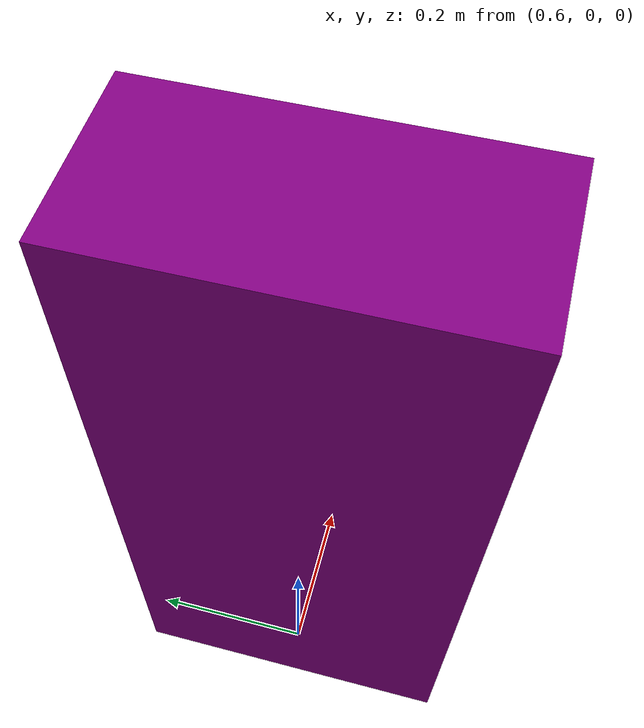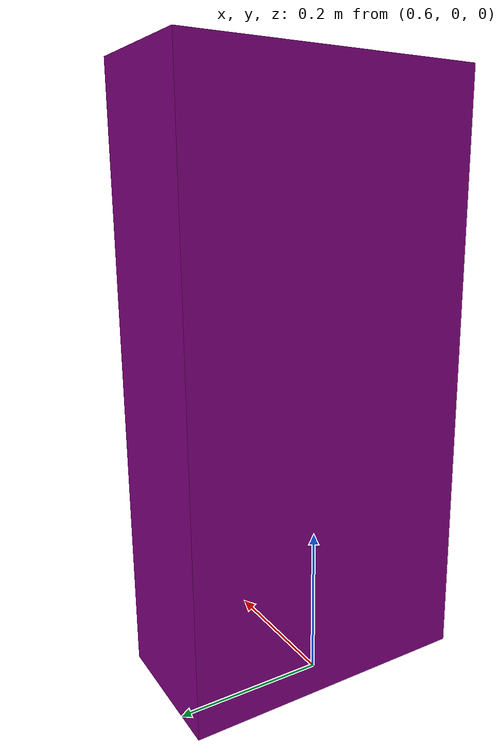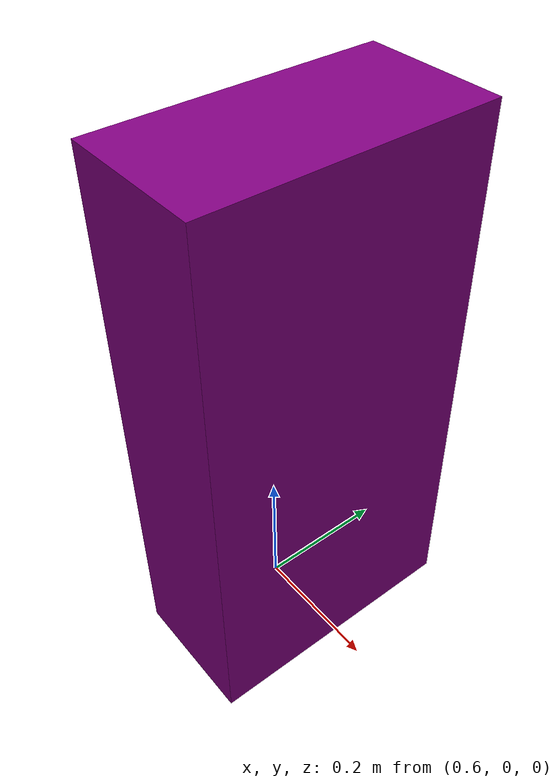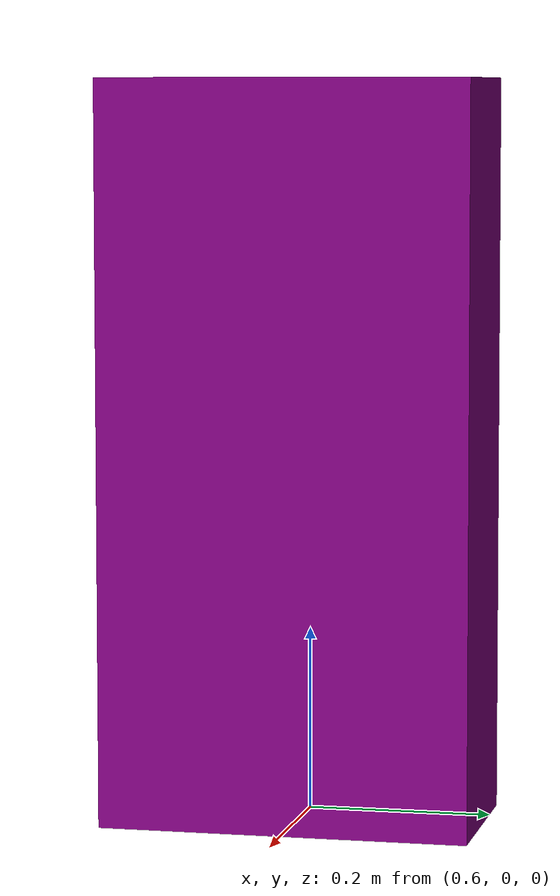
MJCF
<mujoco model="boxes">
  <worldbody>

    <body name="purple_box" pos="0.65 0.0 0.4">
      <freejoint/>
      <geom type="box" size="0.1 0.2 0.4" rgba="0.5 0.0 0.5 1.0"/>
      <inertial pos="0 0 0" mass="5.0" diaginertia="1.0 1.0 1.0"/>
    </body>

  </worldbody>
</mujoco>
